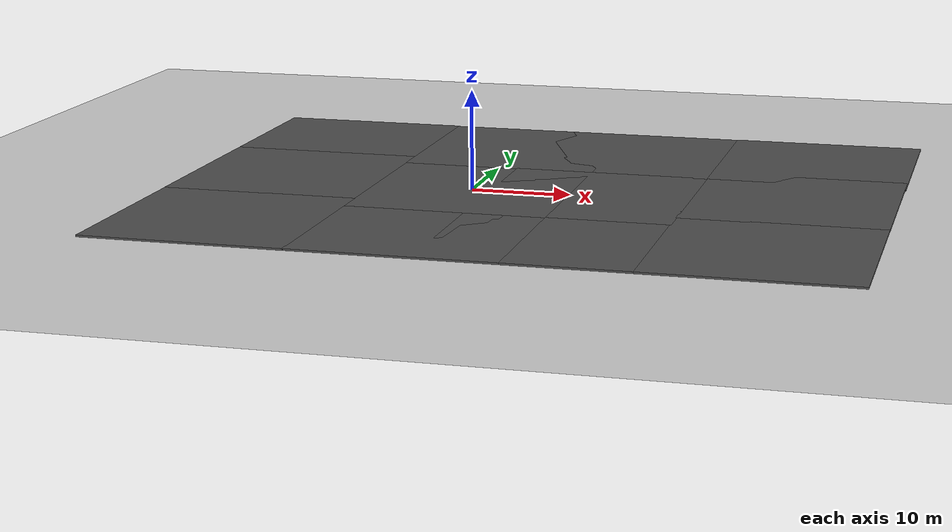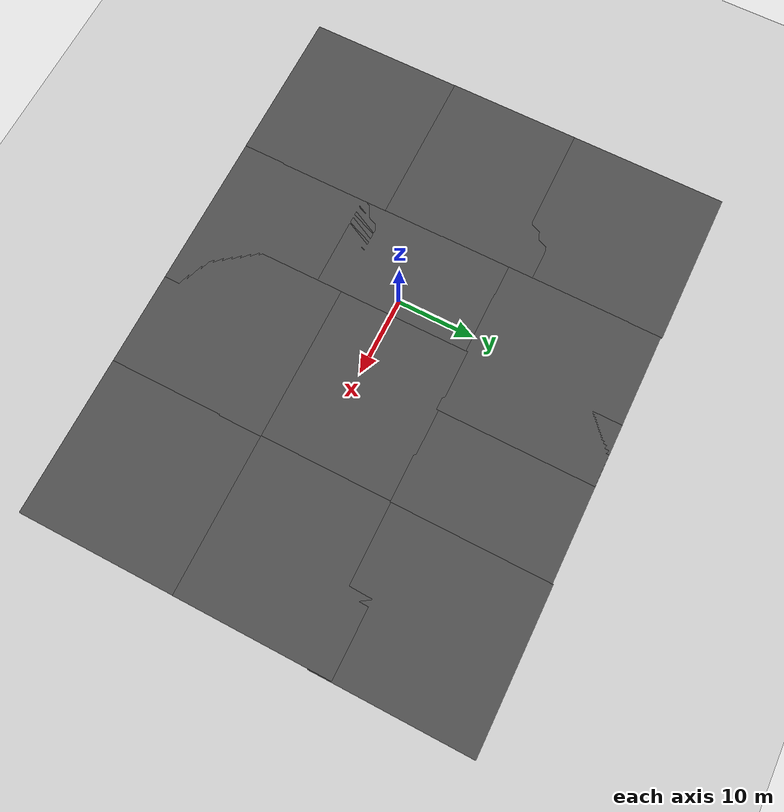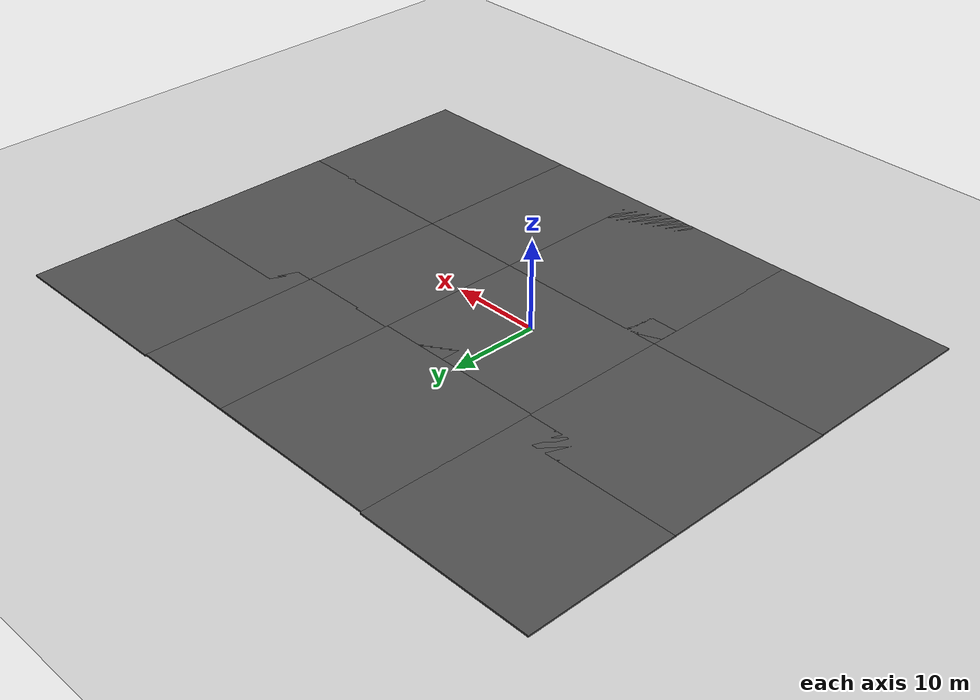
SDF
<sdf version="1.7">
 <world name="default">
  <light name="sun" type="directional">
   <pose>0 0 10 0 -0 0</pose>
   <diffuse>0.8 0.8 0.8 1</diffuse>
   <specular>0.2 0.2 0.2 1</specular>
   <attenuation>
    <range>1000</range>
    <constant>0.9</constant>
    <linear>0.01</linear>
    <quadratic>0.001</quadratic>
   </attenuation>
   <direction>-0.5 0.1 -0.9</direction>
   <spot><inner_angle>0</inner_angle><outer_angle>0</outer_angle><falloff>0</falloff></spot>
  </light>
  <model name="ground_plane">
   <static>1</static>
   <link name="link">
    <collision name="collision">
     <geometry><plane><normal>0 0 1</normal><size>100 100</size></plane></geometry>
     <surface><friction><ode><mu>100</mu><mu2>50</mu2></ode></friction></surface>
    </collision>
    <visual name="visual">
     <cast_shadows>0</cast_shadows>
     <geometry><plane><normal>0 0 1</normal><size>100 100</size></plane></geometry>
     <material>
      <script><uri>file://media/materials/scripts/gazebo.material</uri><name>Gazebo/Grey</name></script>
     </material>
    </visual>
   </link>
  </model>
  <gravity>0 0 -9.8</gravity>
  <magnetic_field>6e-06 2.3e-05 -4.2e-05</magnetic_field>
  <atmosphere type="adiabatic"/>
  <physics type="ode">
   <max_step_size>0.001</max_step_size>
   <real_time_factor>1</real_time_factor>
   <real_time_update_rate>1000</real_time_update_rate>
  </physics>
  <scene><ambient>0.4 0.4 0.4 1</ambient><background>0.7 0.7 0.7 1</background><shadows>1</shadows></scene>
  <audio><device>default</device></audio>
  <spherical_coordinates>
   <surface_model>EARTH_WGS84</surface_model>
   <latitude_deg>0</latitude_deg>
   <longitude_deg>0</longitude_deg>
   <elevation>0</elevation>
   <heading_deg>0</heading_deg>
  </spherical_coordinates>
  <model name="concrete_floor">
   <static>1</static>
   <link name="link">
    <collision name="collision"><geometry><box><size>20 20 0.2</size></box></geometry></collision>
    <visual name="visual">
     <geometry><box><size>20 20 0.2</size></box></geometry>
     <material>
      <script>
       <uri>model://concrete_floor/materials/scripts</uri>
       <uri>model://concrete_floor/materials/textures</uri>
       <name>Concrete/Flat</name>
      </script>
      <ambient>0.2 0.2 0.2 1</ambient>
      <diffuse>0.3 0.3 0.3 1</diffuse>
     </material>
    </visual>
   </link>
   <pose>-0.077817 -0.016421 0 0 -0 0</pose>
  </model>
  <model name="concrete_floor_0">
   <static>1</static>
   <link name="link">
    <collision name="collision"><geometry><box><size>20 20 0.2</size></box></geometry></collision>
    <visual name="visual">
     <geometry><box><size>20 20 0.2</size></box></geometry>
     <material>
      <script>
       <uri>model://concrete_floor/materials/scripts</uri>
       <uri>model://concrete_floor/materials/textures</uri>
       <name>Concrete/Flat</name>
      </script>
      <ambient>0.2 0.2 0.2 1</ambient>
      <diffuse>0.3 0.3 0.3 1</diffuse>
     </material>
    </visual>
   </link>
   <pose>-0.08142 19.9045 0 0 -0 0</pose>
  </model>
  <model name="concrete_floor_1">
   <static>1</static>
   <link name="link">
    <collision name="collision"><geometry><box><size>20 20 0.2</size></box></geometry></collision>
    <visual name="visual">
     <geometry><box><size>20 20 0.2</size></box></geometry>
     <material>
      <script>
       <uri>model://concrete_floor/materials/scripts</uri>
       <uri>model://concrete_floor/materials/textures</uri>
       <name>Concrete/Flat</name>
      </script>
      <ambient>0.2 0.2 0.2 1</ambient>
      <diffuse>0.3 0.3 0.3 1</diffuse>
     </material>
    </visual>
   </link>
   <pose>11.9308 19.9248 0 0 -0 0</pose>
  </model>
  <model name="concrete_floor_3">
   <static>1</static>
   <link name="link">
    <collision name="collision"><geometry><box><size>20 20 0.2</size></box></geometry></collision>
    <visual name="visual">
     <geometry><box><size>20 20 0.2</size></box></geometry>
     <material>
      <script>
       <uri>model://concrete_floor/materials/scripts</uri>
       <uri>model://concrete_floor/materials/textures</uri>
       <name>Concrete/Flat</name>
      </script>
      <ambient>0.2 0.2 0.2 1</ambient>
      <diffuse>0.3 0.3 0.3 1</diffuse>
     </material>
    </visual>
   </link>
   <pose>-0.100198 -16.7583 0 0 -0 0</pose>
  </model>
  <model name="concrete_floor_4">
   <static>1</static>
   <link name="link">
    <collision name="collision"><geometry><box><size>20 20 0.2</size></box></geometry></collision>
    <visual name="visual">
     <geometry><box><size>20 20 0.2</size></box></geometry>
     <material>
      <script>
       <uri>model://concrete_floor/materials/scripts</uri>
       <uri>model://concrete_floor/materials/textures</uri>
       <name>Concrete/Flat</name>
      </script>
      <ambient>0.2 0.2 0.2 1</ambient>
      <diffuse>0.3 0.3 0.3 1</diffuse>
     </material>
    </visual>
   </link>
   <pose>11.9371 -16.7572 0 0 -0 0</pose>
  </model>
  <model name="concrete_floor_5">
   <static>1</static>
   <link name="link">
    <collision name="collision"><geometry><box><size>20 20 0.2</size></box></geometry></collision>
    <visual name="visual">
     <geometry><box><size>20 20 0.2</size></box></geometry>
     <material>
      <script>
       <uri>model://concrete_floor/materials/scripts</uri>
       <uri>model://concrete_floor/materials/textures</uri>
       <name>Concrete/Flat</name>
      </script>
      <ambient>0.2 0.2 0.2 1</ambient>
      <diffuse>0.3 0.3 0.3 1</diffuse>
     </material>
    </visual>
   </link>
   <pose>31.8062 -16.7668 0 0 -0 0</pose>
  </model>
  <model name="concrete_floor_6">
   <static>1</static>
   <link name="link">
    <collision name="collision"><geometry><box><size>20 20 0.2</size></box></geometry></collision>
    <visual name="visual">
     <geometry><box><size>20 20 0.2</size></box></geometry>
     <material>
      <script>
       <uri>model://concrete_floor/materials/scripts</uri>
       <uri>model://concrete_floor/materials/textures</uri>
       <name>Concrete/Flat</name>
      </script>
      <ambient>0.2 0.2 0.2 1</ambient>
      <diffuse>0.3 0.3 0.3 1</diffuse>
     </material>
    </visual>
   </link>
   <pose>31.8213 2.98493 0 0 -0 0</pose>
  </model>
  <model name="concrete_floor_7">
   <static>1</static>
   <link name="link">
    <collision name="collision"><geometry><box><size>20 20 0.2</size></box></geometry></collision>
    <visual name="visual">
     <geometry><box><size>20 20 0.2</size></box></geometry>
     <material>
      <script>
       <uri>model://concrete_floor/materials/scripts</uri>
       <uri>model://concrete_floor/materials/textures</uri>
       <name>Concrete/Flat</name>
      </script>
      <ambient>0.2 0.2 0.2 1</ambient>
      <diffuse>0.3 0.3 0.3 1</diffuse>
     </material>
    </visual>
   </link>
   <pose>31.9107 20.048 0 0 -0 0</pose>
  </model>
  <model name="concrete_floor_2">
   <static>1</static>
   <link name="link">
    <collision name="collision"><geometry><box><size>20 20 0.2</size></box></geometry></collision>
    <visual name="visual">
     <geometry><box><size>20 20 0.2</size></box></geometry>
     <material>
      <script>
       <uri>model://concrete_floor/materials/scripts</uri>
       <uri>model://concrete_floor/materials/textures</uri>
       <name>Concrete/Flat</name>
      </script>
      <ambient>0.2 0.2 0.2 1</ambient>
      <diffuse>0.3 0.3 0.3 1</diffuse>
     </material>
    </visual>
   </link>
   <pose>11.9594 0.164305 0 0 -0 0</pose>
  </model>
  <model name="concrete_floor_8">
   <static>1</static>
   <link name="link">
    <collision name="collision"><geometry><box><size>20 20 0.2</size></box></geometry></collision>
    <visual name="visual">
     <geometry><box><size>20 20 0.2</size></box></geometry>
     <material>
      <script>
       <uri>model://concrete_floor/materials/scripts</uri>
       <uri>model://concrete_floor/materials/textures</uri>
       <name>Concrete/Flat</name>
      </script>
      <ambient>0.2 0.2 0.2 1</ambient>
      <diffuse>0.3 0.3 0.3 1</diffuse>
     </material>
    </visual>
   </link>
   <pose>-19.9973 -16.7787 0 0 -0 0</pose>
  </model>
  <model name="concrete_floor_9">
   <static>1</static>
   <link name="link">
    <collision name="collision"><geometry><box><size>20 20 0.2</size></box></geometry></collision>
    <visual name="visual">
     <geometry><box><size>20 20 0.2</size></box></geometry>
     <material>
      <script>
       <uri>model://concrete_floor/materials/scripts</uri>
       <uri>model://concrete_floor/materials/textures</uri>
       <name>Concrete/Flat</name>
      </script>
      <ambient>0.2 0.2 0.2 1</ambient>
      <diffuse>0.3 0.3 0.3 1</diffuse>
     </material>
    </visual>
   </link>
   <pose>-20.0325 3.11892 0 0 -0 0</pose>
  </model>
  <model name="concrete_floor_10">
   <static>1</static>
   <link name="link">
    <collision name="collision"><geometry><box><size>20 20 0.2</size></box></geometry></collision>
    <visual name="visual">
     <geometry><box><size>20 20 0.2</size></box></geometry>
     <material>
      <script>
       <uri>model://concrete_floor/materials/scripts</uri>
       <uri>model://concrete_floor/materials/textures</uri>
       <name>Concrete/Flat</name>
      </script>
      <ambient>0.2 0.2 0.2 1</ambient>
      <diffuse>0.3 0.3 0.3 1</diffuse>
     </material>
    </visual>
   </link>
   <pose>-20.0317 20.0618 0 0 -0 0</pose>
  </model>
 </world>
</sdf>
